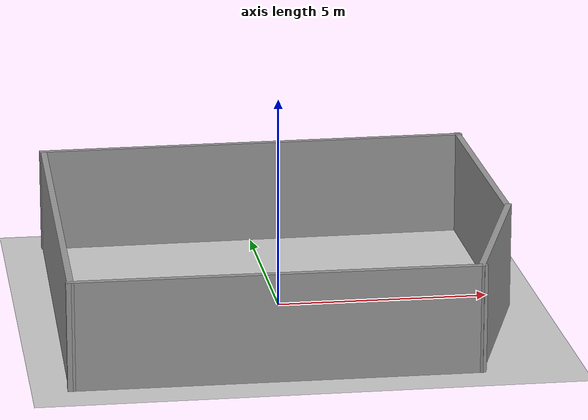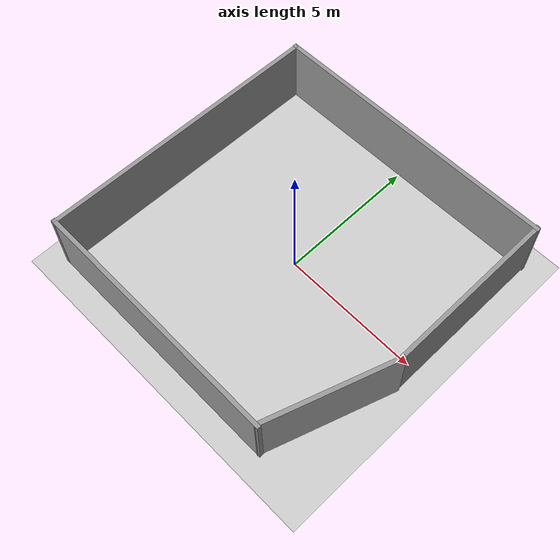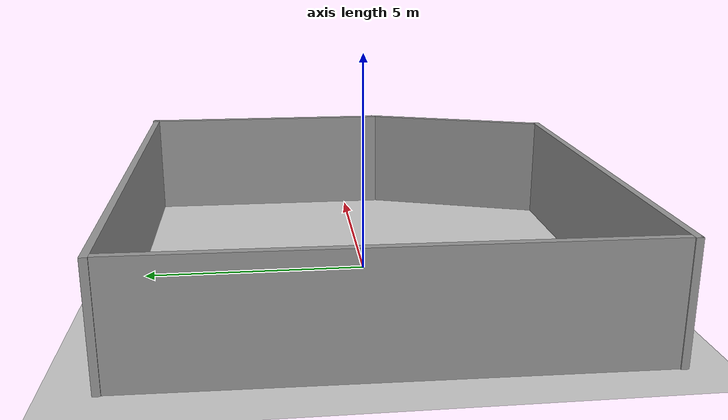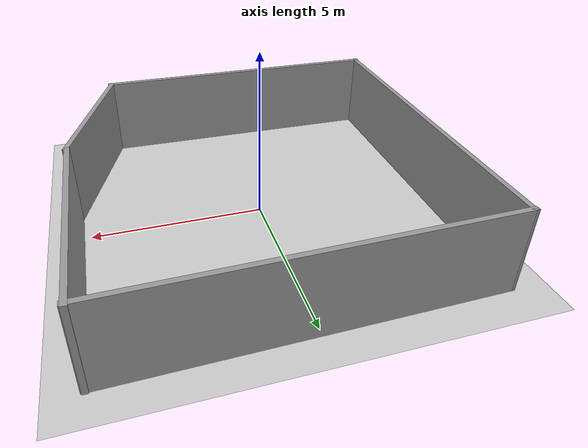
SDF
<?xml version="1.0" ?>
<sdf version="1.6">
  <world name="default">

    <include>
      <name>map_model</name>
      <pose>0 0 0 0 0 0</pose>
      <static>true</static>
      <uri>file://$(find tangent_bug_2dnav)/models/map/model.sdf</uri>
    </include>

    <include>
      <uri>model://ground_plane</uri>
    </include>

  </world>
</sdf>

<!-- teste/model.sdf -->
<sdf version='1.7'>
  <model name='teste'>
    <pose>1.4935 0.979742 0 0 -0 0</pose>
    <link name='Wall_0'>
      <collision name='Wall_0_Collision'>
        <geometry>
          <box>
            <size>9.33295 0.15 2.5</size>
          </box>
        </geometry>
        <pose>0 0 1.25 0 -0 0</pose>
      </collision>
      <visual name='Wall_0_Visual'>
        <pose>0 0 1.25 0 -0 0</pose>
        <geometry>
          <box>
            <size>9.33295 0.15 2.5</size>
          </box>
        </geometry>
        <material>
          <script>
            <uri>file://media/materials/scripts/gazebo.material</uri>
            <name>Gazebo/Grey</name>
          </script>
          <ambient>1 1 1 1</ambient>
        </material>
        <meta>
          <layer>0</layer>
        </meta>
      </visual>
      <pose>-0.728102 -5.21186 0 0 -0 -0.005423</pose>
    </link>
    <link name='Wall_1'>
      <collision name='Wall_1_Collision'>
        <geometry>
          <box>
            <size>4.76352 0.15 2.5</size>
          </box>
        </geometry>
        <pose>0 0 1.25 0 -0 0</pose>
      </collision>
      <visual name='Wall_1_Visual'>
        <pose>0 0 1.25 0 -0 0</pose>
        <geometry>
          <box>
            <size>4.76352 0.15 2.5</size>
          </box>
        </geometry>
        <material>
          <script>
            <uri>file://media/materials/scripts/gazebo.material</uri>
            <name>Gazebo/Grey</name>
          </script>
          <ambient>1 1 1 1</ambient>
        </material>
        <meta>
          <layer>0</layer>
        </meta>
      </visual>
      <pose>4.55491 -3.05355 0 0 -0 1.24203</pose>
    </link>
    <link name='Wall_3'>
      <collision name='Wall_3_Collision'>
        <geometry>
          <box>
            <size>6.25062 0.15 2.5</size>
          </box>
        </geometry>
        <pose>0 0 1.25 0 -0 0</pose>
      </collision>
      <visual name='Wall_3_Visual'>
        <pose>0 0 1.25 0 -0 0</pose>
        <geometry>
          <box>
            <size>6.25062 0.15 2.5</size>
          </box>
        </geometry>
        <material>
          <script>
            <uri>file://media/materials/scripts/gazebo.material</uri>
            <name>Gazebo/Grey</name>
          </script>
          <ambient>1 1 1 1</ambient>
        </material>
        <meta>
          <layer>0</layer>
        </meta>
      </visual>
      <pose>5.27642 2.20657 0 0 -0 1.56971</pose>
    </link>
    <link name='Wall_4'>
      <collision name='Wall_4_Collision'>
        <geometry>
          <box>
            <size>10.6038 0.15 2.5</size>
          </box>
        </geometry>
        <pose>0 0 1.25 0 -0 0</pose>
      </collision>
      <visual name='Wall_4_Visual'>
        <pose>0 0 1.25 0 -0 0</pose>
        <geometry>
          <box>
            <size>10.6038 0.15 2.5</size>
          </box>
        </geometry>
        <material>
          <script>
            <uri>file://media/materials/scripts/gazebo.material</uri>
            <name>Gazebo/Grey</name>
          </script>
          <ambient>1 1 1 1</ambient>
        </material>
        <meta>
          <layer>0</layer>
        </meta>
      </visual>
      <pose>0.079904 5.16048 0 0 -0 -3.12824</pose>
    </link>
    <link name='Wall_5'>
      <collision name='Wall_5_Collision'>
        <geometry>
          <box>
            <size>10.4291 0.15 2.5</size>
          </box>
        </geometry>
        <pose>0 0 1.25 0 -0 0</pose>
      </collision>
      <visual name='Wall_5_Visual'>
        <pose>0 0 1.25 0 -0 0</pose>
        <geometry>
          <box>
            <size>10.4291 0.15 2.5</size>
          </box>
        </geometry>
        <material>
          <script>
            <uri>file://media/materials/scripts/gazebo.material</uri>
            <name>Gazebo/Grey</name>
          </script>
          <ambient>1 1 1 1</ambient>
        </material>
        <meta>
          <layer>0</layer>
        </meta>
      </visual>
      <pose>-5.20641 -0.048141 0 0 -0 -1.58763</pose>
    </link>
    <static>1</static>
  </model>
</sdf>
